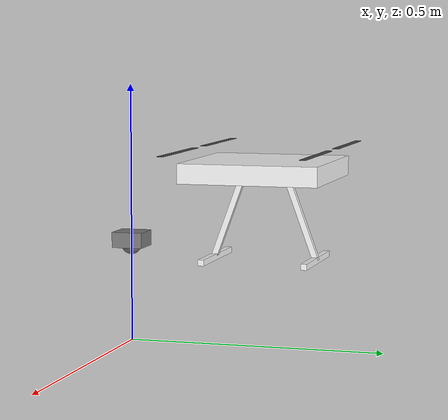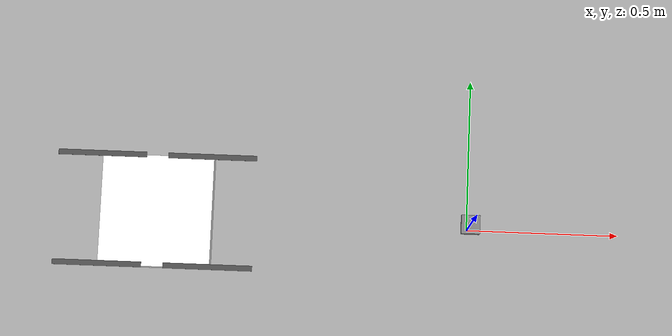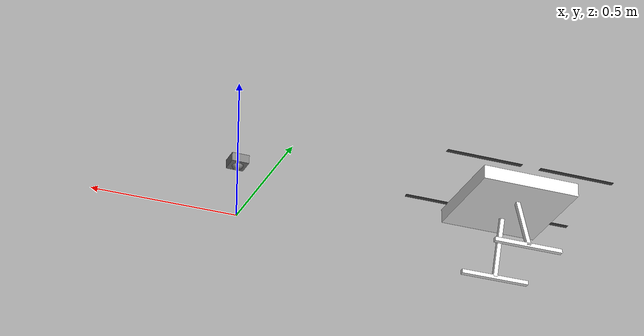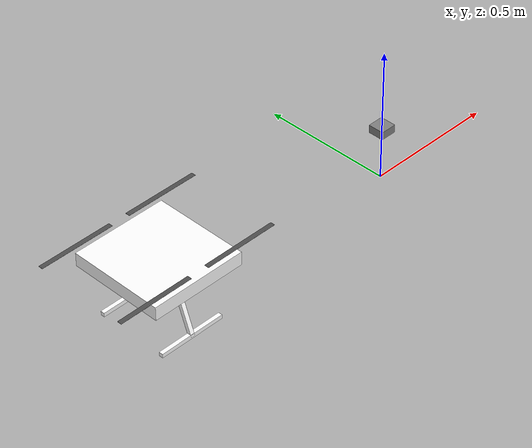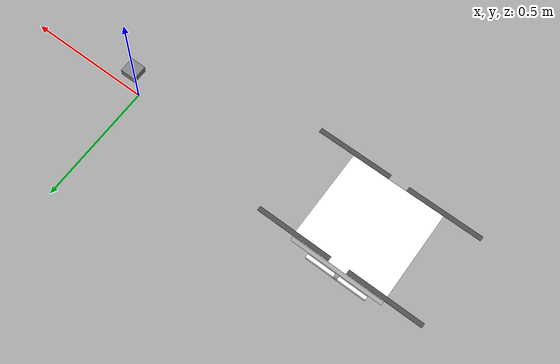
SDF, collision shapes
<?xml version="1.0" ?>
<sdf version="1.9">

  <model name="x500_lidar_front">

    <!-- Include PX4 x500 drone -->
    <include merge="true">
      <uri>model://x500</uri>
    </include>

    <joint name="lidar_joint" type="fixed">
      <parent>base_link</parent>
      <child>lidar_link</child>
      <pose>0 0 0 0 0 0</pose>
    </joint>

    <!-- Lidar link -->
    <link name="lidar_link">
      <pose>0 0 0.2 0 0 0</pose>
      <inertial>
        <mass>0.8</mass>
        <pose>0 0 0 0 0 0</pose>
        <inertia>
          <ixx>0.001</ixx>
          <ixy>0</ixy>
          <ixz>0</ixz>
          <iyy>0.001</iyy>
          <iyz>0</iyz>
          <izz>0.001</izz>
        </inertia>
      </inertial>

      <!-- Box body -->
      <visual name="lidar_box_visual">
        <pose>0 0 0 0 0 0</pose>
        <geometry>
          <box>
            <size>0.06 0.06 0.03</size>
          </box>
        </geometry>
        <material>
          <ambient>0.5 0.5 0.5 1</ambient>
          <diffuse>0.5 0.5 0.5 1</diffuse>
        </material>
      </visual>

      <collision name="lidar_box_collision">
        <pose>0 0 0 0 0 0</pose>
        <geometry>
          <box>
            <size>0.06 0.06 0.03</size>
          </box>
        </geometry>
      </collision>

      <!-- Fake lens sphere -->
      <visual name="lidar_lens_visual">
        <pose>0 0 -0.01 0 0 0</pose>
        <geometry>
          <sphere>
            <radius>0.02</radius>
          </sphere>
        </geometry>
        <material>
          <ambient>0 0 0 1</ambient>
          <diffuse>0 0 0 1</diffuse>
        </material>
      </visual>

      <collision name="lidar_lens_collision">
        <pose>0 0 -0.01 0 0 0</pose>
        <geometry>
          <sphere>
            <radius>0.02</radius>
          </sphere>
        </geometry>
      </collision>

      <sensor name="x500_3d_lidar" type="gpu_lidar">
        <pose>0 0 -0.05 0 0 0</pose>
        <always_on>true</always_on>
        <update_rate>10</update_rate>
        <visualize>true</visualize>

        <topic>/drone/lidar</topic>
        <gz_frame_id>lidar_link</gz_frame_id>

        <lidar>

          <scan>

            <horizontal>
              <samples>1024</samples>
              <resolution>1</resolution>
              <min_angle>-3.14159</min_angle>
              <max_angle>3.14159</max_angle>
            </horizontal>

            <vertical>
              <samples>16</samples>
              <resolution>1</resolution>
              <min_angle>-0.261799</min_angle>
              <max_angle>0.261799</max_angle>
            </vertical>

          </scan>

          <range>
            <min>0.3</min>
            <max>50.0</max>
            <resolution>0.01</resolution>
          </range>

          <noise>
            <type>gaussian</type>
            <mean>0</mean>
            <stddev>0.01</stddev>
          </noise>

        </lidar>

      </sensor>
    </link>

  </model>

</sdf>

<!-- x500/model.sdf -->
<sdf version='1.9'>
  <model name='x500'>
    <include merge='true'>
      <uri>model://x500_base</uri>
    </include>
    <plugin filename="gz-sim-multicopter-motor-model-system"
      name="gz::sim::systems::MulticopterMotorModel">
      <jointName>rotor_0_joint</jointName>
      <linkName>rotor_0</linkName>
      <turningDirection>ccw</turningDirection>
      <timeConstantUp>0.0125</timeConstantUp>
      <timeConstantDown>0.025</timeConstantDown>
      <maxRotVelocity>1000.0</maxRotVelocity>
      <motorConstant>8.54858e-06</motorConstant>
      <momentConstant>0.016</momentConstant>
      <commandSubTopic>command/motor_speed</commandSubTopic>
      <motorNumber>0</motorNumber>
      <rotorDragCoefficient>8.06428e-05</rotorDragCoefficient>
      <rollingMomentCoefficient>1e-06</rollingMomentCoefficient>
      <rotorVelocitySlowdownSim>10</rotorVelocitySlowdownSim>
      <motorType>velocity</motorType>
    </plugin>
    <plugin filename="gz-sim-multicopter-motor-model-system"
      name="gz::sim::systems::MulticopterMotorModel">
      <jointName>rotor_1_joint</jointName>
      <linkName>rotor_1</linkName>
      <turningDirection>ccw</turningDirection>
      <timeConstantUp>0.0125</timeConstantUp>
      <timeConstantDown>0.025</timeConstantDown>
      <maxRotVelocity>1000.0</maxRotVelocity>
      <motorConstant>8.54858e-06</motorConstant>
      <momentConstant>0.016</momentConstant>
      <commandSubTopic>command/motor_speed</commandSubTopic>
      <motorNumber>1</motorNumber>
      <rotorDragCoefficient>8.06428e-05</rotorDragCoefficient>
      <rollingMomentCoefficient>1e-06</rollingMomentCoefficient>
      <rotorVelocitySlowdownSim>10</rotorVelocitySlowdownSim>
      <motorType>velocity</motorType>
    </plugin>
    <plugin filename="gz-sim-multicopter-motor-model-system"
      name="gz::sim::systems::MulticopterMotorModel">
      <jointName>rotor_2_joint</jointName>
      <linkName>rotor_2</linkName>
      <turningDirection>cw</turningDirection>
      <timeConstantUp>0.0125</timeConstantUp>
      <timeConstantDown>0.025</timeConstantDown>
      <maxRotVelocity>1000.0</maxRotVelocity>
      <motorConstant>8.54858e-06</motorConstant>
      <momentConstant>0.016</momentConstant>
      <commandSubTopic>command/motor_speed</commandSubTopic>
      <motorNumber>2</motorNumber>
      <rotorDragCoefficient>8.06428e-05</rotorDragCoefficient>
      <rollingMomentCoefficient>1e-06</rollingMomentCoefficient>
      <rotorVelocitySlowdownSim>10</rotorVelocitySlowdownSim>
      <motorType>velocity</motorType>
    </plugin>
    <plugin filename="gz-sim-multicopter-motor-model-system"
      name="gz::sim::systems::MulticopterMotorModel">
      <jointName>rotor_3_joint</jointName>
      <linkName>rotor_3</linkName>
      <turningDirection>cw</turningDirection>
      <timeConstantUp>0.0125</timeConstantUp>
      <timeConstantDown>0.025</timeConstantDown>
      <maxRotVelocity>1000.0</maxRotVelocity>
      <motorConstant>8.54858e-06</motorConstant>
      <momentConstant>0.016</momentConstant>
      <commandSubTopic>command/motor_speed</commandSubTopic>
      <motorNumber>3</motorNumber>
      <rotorDragCoefficient>8.06428e-05</rotorDragCoefficient>
      <rollingMomentCoefficient>1e-06</rollingMomentCoefficient>
      <rotorVelocitySlowdownSim>10</rotorVelocitySlowdownSim>
      <motorType>velocity</motorType>
    </plugin>
    <plugin filename="MotorFailurePlugin"
      name="gz::sim::systems::MotorFailureSystem">
    </plugin>

    <joint name="lidar_joint" type="fixed">
      <parent>base_link</parent>
      <child>lidar_link</child>
      <pose>0 0 0 0 0 0</pose>
    </joint>

    <!-- Lidar link -->
    <link name="lidar_link">
      <pose>0 0 0.2 0 0 0</pose>
      <inertial>
        <mass>0.8</mass>
        <pose>0 0 0 0 0 0</pose>
        <inertia>
          <ixx>0.001</ixx>
          <ixy>0</ixy>
          <ixz>0</ixz>
          <iyy>0.001</iyy>
          <iyz>0</iyz>
          <izz>0.001</izz>
        </inertia>
      </inertial>

      <!-- Box body -->
      <visual name="lidar_box_visual">
        <pose>0 0 0 0 0 0</pose>
        <geometry>
          <box>
            <size>0.06 0.06 0.03</size>
          </box>
        </geometry>
        <material>
          <ambient>0.5 0.5 0.5 1</ambient>
          <diffuse>0.5 0.5 0.5 1</diffuse>
        </material>
      </visual>

      <collision name="lidar_box_collision">
        <pose>0 0 0 0 0 0</pose>
        <geometry>
          <box>
            <size>0.06 0.06 0.03</size>
          </box>
        </geometry>
      </collision>

      <!-- Fake lens sphere -->
      <visual name="lidar_lens_visual">
        <pose>0 0 -0.01 0 0 0</pose>
        <geometry>
          <sphere>
            <radius>0.02</radius>
          </sphere>
        </geometry>
        <material>
          <ambient>0 0 0 1</ambient>
          <diffuse>0 0 0 1</diffuse>
        </material>
      </visual>

      <collision name="lidar_lens_collision">
        <pose>0 0 -0.01 0 0 0</pose>
        <geometry>
          <sphere>
            <radius>0.02</radius>
          </sphere>
        </geometry>
      </collision>

      <sensor name="x500_3d_lidar" type="gpu_lidar">
        <pose>0 0 -0.05 0 0 0</pose>
        <always_on>true</always_on>
        <update_rate>10</update_rate>
        <visualize>true</visualize>

        <topic>drone_lidar</topic>
        <gz_frame_id>lidar_link</gz_frame_id>

        <lidar>
          <scan>
            <horizontal>
              <samples>1024</samples>
              <resolution>1</resolution>
              <min_angle>-3.14159</min_angle>
              <max_angle>3.14159</max_angle>
            </horizontal>

            <vertical>
              <samples>16</samples>
              <resolution>1</resolution>
              <min_angle>-0.26</min_angle>
              <max_angle>0.26</max_angle>
            </vertical>
          </scan>

          <range>
            <min>0.1</min>
            <max>50.0</max>
            <resolution>0.01</resolution>
          </range>

          <noise>
            <type>gaussian</type>
            <mean>0</mean>
            <stddev>0.01</stddev>
          </noise>
        </lidar>
      </sensor>
    </link>
  </model>
</sdf>

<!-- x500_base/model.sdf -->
<sdf version='1.9'>
  <model name='x500_base'>
    <pose>-1 0 .24 0 0 0</pose>
    <self_collide>false</self_collide>
    <static>false</static>
    <link name="base_link">
      <inertial>
        <mass>2.0</mass>
        <inertia>
          <ixx>0.021666666666666670</ixx>
          <ixy>0</ixy>
          <ixz>0</ixz>
          <iyy>0.02166666666666667</iyy>
          <iyz>0</iyz>
          <izz>0.04000000000000001</izz>
        </inertia>
      </inertial>
      <gravity>true</gravity>
      <velocity_decay />
      <visual name="base_link_visual">
        <pose>0 0 .025 0 0 3.141592654</pose>
        <geometry>
          <mesh>
            <scale>1 1 1</scale>
            <uri>model://x500_base/meshes/NXP-HGD-CF.dae</uri>
          </mesh>
        </geometry>
      </visual>
      <visual name="5010_motor_base_0">
        <pose>0.174 0.174 .032 0 0 -.45</pose>
        <geometry>
          <mesh>
            <scale>1 1 1</scale>
            <uri>model://x500_base/meshes/5010Base.dae</uri>
          </mesh>
        </geometry>
      </visual>
      <visual name="5010_motor_base_1">
        <pose>-0.174 0.174 .032 0 0 -.45</pose>
        <geometry>
          <mesh>
            <scale>1 1 1</scale>
            <uri>model://x500_base/meshes/5010Base.dae</uri>
          </mesh>
        </geometry>
      </visual>
      <visual name="5010_motor_base_2">
        <pose>0.174 -0.174 .032 0 0 -.45</pose>
        <geometry>
          <mesh>
            <scale>1 1 1</scale>
            <uri>model://x500_base/meshes/5010Base.dae</uri>
          </mesh>
        </geometry>
      </visual>
      <visual name="5010_motor_base_3">
        <pose>-0.174 -0.174 .032 0 0 -.45</pose>
        <geometry>
          <mesh>
            <scale>1 1 1</scale>
            <uri>model://x500_base/meshes/5010Base.dae</uri>
          </mesh>
        </geometry>
      </visual>
      <visual name="NXP_FMUK66_FRONT">
        <pose>0.047 .001 .043 1 0 1.57</pose>
        <cast_shadows>false</cast_shadows>
        <geometry>
          <plane>
            <normal>0 0 1</normal>
            <size>.013 .007</size>
          </plane>
        </geometry>
        <material>
          <diffuse>1.0 1.0 1.0</diffuse>
          <specular>1.0 1.0 1.0</specular>
          <pbr>
            <metal>
              <albedo_map>model://x500_base/materials/textures/nxp.png</albedo_map>
            </metal>
          </pbr>
        </material>
      </visual>
      <visual name="NXP_FMUK66_TOP">
        <pose>-0.023 0 .0515 0 0 -1.57</pose>
        <cast_shadows>false</cast_shadows>
        <geometry>
          <plane>
            <normal>0 0 1</normal>
            <size>.013 .007</size>
          </plane>
        </geometry>
        <material>
          <diffuse>1.0 1.0 1.0</diffuse>
          <specular>1.0 1.0 1.0</specular>
          <pbr>
            <metal>
              <albedo_map>model://x500_base/materials/textures/nxp.png</albedo_map>
            </metal>
          </pbr>
        </material>
      </visual>
      <visual name="RDDRONE_FMUK66_TOP">
        <pose>-.03 0 .0515 0 0 -1.57</pose>
        <cast_shadows>false</cast_shadows>
        <geometry>
          <plane>
            <normal>0 0 1</normal>
            <size>.032 .0034</size>
          </plane>
        </geometry>
        <material>
          <diffuse>1.0 1.0 1.0</diffuse>
          <specular>1.0 1.0 1.0</specular>
          <pbr>
            <metal>
              <albedo_map>model://x500_base/materials/textures/rd.png</albedo_map>
            </metal>
          </pbr>
        </material>
      </visual>
      <collision name="base_link_collision_0">
        <pose>0 0 .007 0 0 0</pose>
        <geometry>
          <box>
            <size>0.35355339059327373 0.35355339059327373 0.05</size>
          </box>
        </geometry>
        <surface>
          <contact>
            <ode>
              <min_depth>0.001</min_depth>
              <max_vel>0</max_vel>
            </ode>
          </contact>
          <friction>
            <ode />
          </friction>
        </surface>
      </collision>
      <collision name="base_link_collision_1">
        <pose>0 -0.098 -.123 -0.35 0 0</pose>
        <geometry>
          <box>
            <size>0.015 0.015 0.21</size>
          </box>
        </geometry>
        <surface>
          <contact>
            <ode>
              <min_depth>0.001</min_depth>
              <max_vel>0</max_vel>
            </ode>
          </contact>
          <friction>
            <ode />
          </friction>
        </surface>
      </collision>
      <collision name="base_link_collision_2">
        <pose>0 0.098 -.123 0.35 0 0</pose>
        <geometry>
          <box>
            <size>0.015 0.015 0.21</size>
          </box>
        </geometry>
        <surface>
          <contact>
            <ode>
              <min_depth>0.001</min_depth>
              <max_vel>0</max_vel>
            </ode>
          </contact>
          <friction>
            <ode />
          </friction>
        </surface>
      </collision>
      <collision name="base_link_collision_3">
        <pose>0 -0.132 -.2195 0 0 0</pose>
        <geometry>
          <box>
            <size>0.25 0.015 0.015</size>
          </box>
        </geometry>
        <surface>
          <contact>
            <ode>
              <min_depth>0.001</min_depth>
              <max_vel>0</max_vel>
            </ode>
          </contact>
          <friction>
            <ode />
          </friction>
        </surface>
      </collision>
      <collision name="base_link_collision_4">
        <pose>0 0.132 -.2195 0 0 0</pose>
        <geometry>
          <box>
            <size>0.25 0.015 0.015</size>
          </box>
        </geometry>
        <surface>
          <contact>
            <ode>
              <min_depth>0.001</min_depth>
              <max_vel>0</max_vel>
            </ode>
          </contact>
          <friction>
            <ode />
          </friction>
        </surface>
      </collision>
      <sensor name="air_pressure_sensor" type="air_pressure">
        <gz_frame_id>base_link</gz_frame_id>
        <always_on>1</always_on>
        <update_rate>50</update_rate>
        <air_pressure>
          <!-- Noise modeled after BMP390 -->
          <pressure>
            <noise type="gaussian">
              <mean>0</mean>
              <stddev>3</stddev>
            </noise>
          </pressure>
        </air_pressure>
      </sensor>
      <sensor name="magnetometer_sensor" type="magnetometer">
        <gz_frame_id>base_link</gz_frame_id>
        <always_on>1</always_on>
        <update_rate>100</update_rate>
        <magnetometer>
          <!-- TODO: update to fix units and coordinate system when we move past Harmonic -->
          <!-- See https://github.com/gazebosim/gz-sim/pull/2460 -->
          <!-- 3mgauss RMS: NOTE: noise is in tesla but sensor reports data in gauss -->
          <!-- Noise modeled after IIS2MDC -->
          <x>
            <noise type="gaussian">
              <stddev>0.0001</stddev>
            </noise>
          </x>
          <y>
            <noise type="gaussian">
              <stddev>0.0001</stddev>
            </noise>
          </y>
          <z>
            <noise type="gaussian">
              <stddev>0.0001</stddev>
            </noise>
          </z>
        </magnetometer>
      </sensor>
      <sensor name="imu_sensor" type="imu">
        <gz_frame_id>base_link</gz_frame_id>
        <always_on>1</always_on>
        <update_rate>250</update_rate>
        <imu>
          <angular_velocity>
            <!-- Noise modeled after IIM42653 -->
            <!-- 0.05 deg/s converted to rad/s -->
            <x>
              <noise type="gaussian">
                <mean>0.0</mean>
                <stddev>0.0008726646</stddev>
              </noise>
            </x>
            <y>
              <noise type="gaussian">
                <mean>0.0</mean>
                <stddev>0.0008726646</stddev>
              </noise>
            </y>
            <z>
              <noise type="gaussian">
                <mean>0.0</mean>
                <stddev>0.0008726646</stddev>
              </noise>
            </z>
          </angular_velocity>
          <linear_acceleration>
            <!-- Noise modeled after IIM42653 -->
            <!-- X & Y axis: 0.65 mg-rms converted to m/ss -->
            <x>
              <noise type="gaussian">
                <mean>0.0</mean>
                <stddev>0.00637</stddev>
              </noise>
            </x>
            <y>
              <noise type="gaussian">
                <mean>0.0</mean>
                <stddev>0.00637</stddev>
              </noise>
            </y>
            <!-- Z axis: 0.70 mg-rms converted to m/ss-->
            <z>
              <noise type="gaussian">
                <mean>0.0</mean>
                <stddev>0.00686</stddev>
              </noise>
            </z>
          </linear_acceleration>
        </imu>
      </sensor>
      <sensor name="navsat_sensor" type="navsat">
        <gz_frame_id>base_link</gz_frame_id>
        <always_on>1</always_on>
        <update_rate>30</update_rate>
      </sensor>
    </link>
    <link name="rotor_0">
      <gravity>true</gravity>
      <self_collide>false</self_collide>
      <velocity_decay />
      <pose>0.174 -0.174 0.06 0 0 0</pose>
      <inertial>
        <mass>0.016076923076923075</mass>
        <inertia>
          <ixx>3.8464910483993325e-07</ixx>
          <iyy>2.6115851691700804e-05</iyy>
          <izz>2.649858234714004e-05</izz>
        </inertia>
      </inertial>
      <visual name="rotor_0_visual">
        <pose>-0.022 -0.14638461538461536 -0.016 0 0 0</pose>
        <geometry>
          <mesh>
            <scale>0.8461538461538461 0.8461538461538461 0.8461538461538461</scale>
            <uri>model://x500_base/meshes/1345_prop_ccw.stl</uri>
          </mesh>
        </geometry>
        <material>
          <script>
            <name>Gazebo/DarkGrey</name>
            <uri>file://media/materials/scripts/gazebo.material</uri>
          </script>
        </material>
      </visual>
      <visual name="rotor_0_visual_motor_bell">
        <pose>0 0 -.032 0 0 0</pose>
        <geometry>
          <mesh>
            <scale>1 1 1</scale>
            <uri>model://x500_base/meshes/5010Bell.dae</uri>
          </mesh>
        </geometry>
      </visual>
      <collision name="rotor_0_collision">
        <pose>0 0 0 0 0 0 </pose>
        <geometry>
          <box>
            <size>0.2792307692307692 0.016923076923076923 0.0008461538461538462</size>
          </box>
        </geometry>
        <surface>
          <contact>
            <ode>
              <min_depth>0.001</min_depth>
              <max_vel>0</max_vel>
            </ode>
          </contact>
          <friction>
            <ode />
          </friction>
        </surface>
      </collision>
    </link>
    <joint name="rotor_0_joint" type="revolute">
      <parent>base_link</parent>
      <child>rotor_0</child>
      <axis>
        <xyz>0 0 1</xyz>
        <limit>
          <lower>-1e+16</lower>
          <upper>1e+16</upper>
        </limit>
        <dynamics>
          <spring_reference>0</spring_reference>
          <spring_stiffness>0</spring_stiffness>
        </dynamics>
      </axis>
    </joint>
    <link name="rotor_1">
      <gravity>true</gravity>
      <self_collide>false</self_collide>
      <velocity_decay />
      <pose>-0.174 0.174 0.06 0 0 0</pose>
      <inertial>
        <mass>0.016076923076923075</mass>
        <inertia>
          <ixx>3.8464910483993325e-07</ixx>
          <iyy>2.6115851691700804e-05</iyy>
          <izz>2.649858234714004e-05</izz>
        </inertia>
      </inertial>
      <visual name="rotor_1_visual">
        <pose>-0.022 -0.14638461538461536 -0.016 0 0 0</pose>
        <geometry>
          <mesh>
            <scale>0.8461538461538461 0.8461538461538461 0.8461538461538461</scale>
            <uri>model://x500_base/meshes/1345_prop_ccw.stl</uri>
          </mesh>
        </geometry>
        <material>
          <script>
            <name>Gazebo/DarkGrey</name>
            <uri>file://media/materials/scripts/gazebo.material</uri>
          </script>
        </material>
      </visual>
      <visual name="rotor_1_visual_motor_top">
        <pose>0 0 -.032 0 0 0</pose>
        <geometry>
          <mesh>
            <scale>1 1 1</scale>
            <uri>model://x500_base/meshes/5010Bell.dae</uri>
          </mesh>
        </geometry>
      </visual>
      <collision name="rotor_1_collision">
        <pose>0 0 0 0 0 0 </pose>
        <geometry>
          <box>
            <size>0.2792307692307692 0.016923076923076923 0.0008461538461538462</size>
          </box>
        </geometry>
        <surface>
          <contact>
            <ode>
              <min_depth>0.001</min_depth>
              <max_vel>0</max_vel>
            </ode>
          </contact>
          <friction>
            <ode />
          </friction>
        </surface>
      </collision>
    </link>
    <joint name="rotor_1_joint" type="revolute">
      <parent>base_link</parent>
      <child>rotor_1</child>
      <axis>
        <xyz>0 0 1</xyz>
        <limit>
          <lower>-1e+16</lower>
          <upper>1e+16</upper>
        </limit>
        <dynamics>
          <spring_reference>0</spring_reference>
          <spring_stiffness>0</spring_stiffness>
        </dynamics>
      </axis>
    </joint>
    <link name="rotor_2">
      <gravity>true</gravity>
      <self_collide>false</self_collide>
      <velocity_decay />
      <pose>0.174 0.174 0.06 0 0 0</pose>
      <inertial>
        <mass>0.016076923076923075</mass>
        <inertia>
          <ixx>3.8464910483993325e-07</ixx>
          <iyy>2.6115851691700804e-05</iyy>
          <izz>2.649858234714004e-05</izz>
        </inertia>
      </inertial>
      <visual name="rotor_2_visual">
        <pose>-0.022 -0.14638461538461536 -0.016 0 0 0</pose>
        <geometry>
          <mesh>
            <scale>0.8461538461538461 0.8461538461538461 0.8461538461538461</scale>
            <uri>model://x500_base/meshes/1345_prop_cw.stl</uri>
          </mesh>
        </geometry>
        <material>
          <script>
            <name>Gazebo/DarkGrey</name>
            <uri>file://media/materials/scripts/gazebo.material</uri>
          </script>
        </material>
      </visual>
      <visual name="rotor_2_visual_motor_top">
        <pose>0 0 -.032 0 0 0</pose>
        <geometry>
          <mesh>
            <scale>1 1 1</scale>
            <uri>model://x500_base/meshes/5010Bell.dae</uri>
          </mesh>
        </geometry>
      </visual>
      <collision name="rotor_2_collision">
        <pose>0 0 0 0 0 0 </pose>
        <geometry>
          <box>
            <size>0.2792307692307692 0.016923076923076923 0.0008461538461538462</size>
          </box>
        </geometry>
        <surface>
          <contact>
            <ode>
              <min_depth>0.001</min_depth>
              <max_vel>0</max_vel>
            </ode>
          </contact>
          <friction>
            <ode />
          </friction>
        </surface>
      </collision>
    </link>
    <joint name="rotor_2_joint" type="revolute">
      <parent>base_link</parent>
      <child>rotor_2</child>
      <axis>
        <xyz>0 0 1</xyz>
        <limit>
          <lower>-1e+16</lower>
          <upper>1e+16</upper>
        </limit>
        <dynamics>
          <spring_reference>0</spring_reference>
          <spring_stiffness>0</spring_stiffness>
        </dynamics>
      </axis>
    </joint>
    <link name="rotor_3">
      <gravity>true</gravity>
      <self_collide>false</self_collide>
      <velocity_decay />
      <pose>-0.174 -0.174 0.06 0 0 0</pose>
      <inertial>
        <mass>0.016076923076923075</mass>
        <inertia>
          <ixx>3.8464910483993325e-07</ixx>
          <iyy>2.6115851691700804e-05</iyy>
          <izz>2.649858234714004e-05</izz>
        </inertia>
      </inertial>
      <visual name="rotor_3_visual">
        <pose>-0.022 -0.14638461538461536 -0.016 0 0 0</pose>
        <geometry>
          <mesh>
            <scale>0.8461538461538461 0.8461538461538461 0.8461538461538461</scale>
            <uri>model://x500_base/meshes/1345_prop_cw.stl</uri>
          </mesh>
        </geometry>
        <material>
          <script>
            <name>Gazebo/DarkGrey</name>
            <uri>file://media/materials/scripts/gazebo.material</uri>
          </script>
        </material>
      </visual>
      <visual name="rotor_3_visual_motor_top">
        <pose>0 0 -.032 0 0 0</pose>
        <geometry>
          <mesh>
            <scale>1 1 1</scale>
            <uri>model://x500_base/meshes/5010Bell.dae</uri>
          </mesh>
        </geometry>
      </visual>
      <collision name="rotor_3_collision">
        <pose>0 0 0 0 0 0 </pose>
        <geometry>
          <box>
            <size>0.2792307692307692 0.016923076923076923 0.0008461538461538462</size>
          </box>
        </geometry>
        <surface>
          <contact>
            <ode>
              <min_depth>0.001</min_depth>
              <max_vel>0</max_vel>
            </ode>
          </contact>
          <friction>
            <ode />
          </friction>
        </surface>
      </collision>
    </link>
    <joint name="rotor_3_joint" type="revolute">
      <parent>base_link</parent>
      <child>rotor_3</child>
      <axis>
        <xyz>0 0 1</xyz>
        <limit>
          <lower>-1e+16</lower>
          <upper>1e+16</upper>
        </limit>
        <dynamics>
          <spring_reference>0</spring_reference>
          <spring_stiffness>0</spring_stiffness>
        </dynamics>
      </axis>
    </joint>
  </model>
</sdf>
